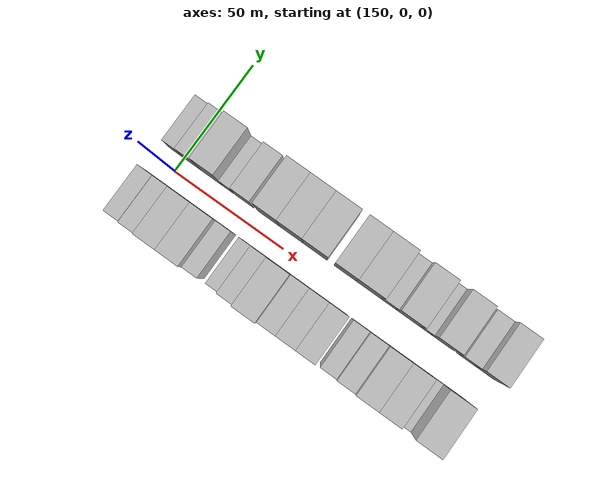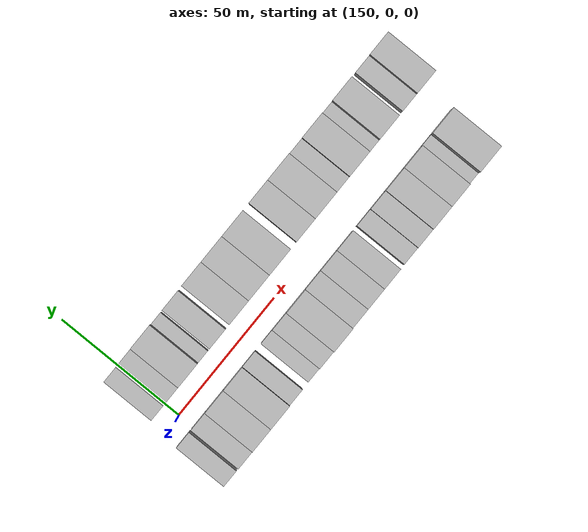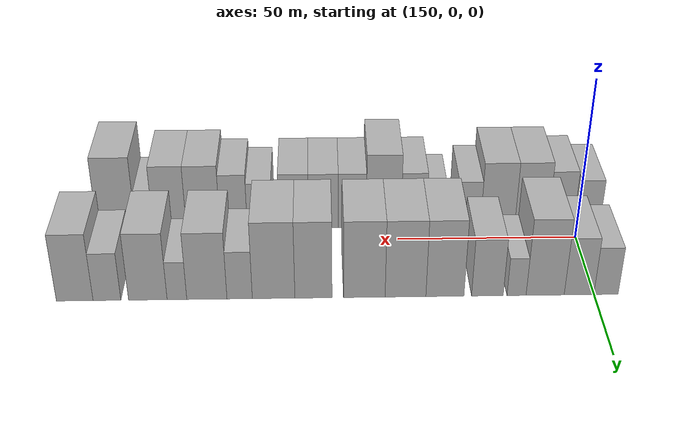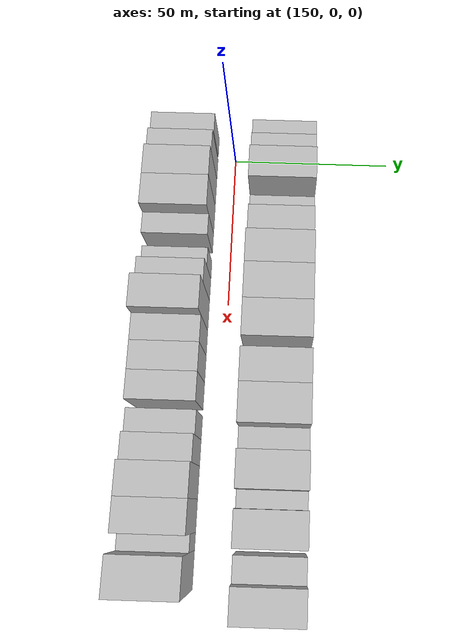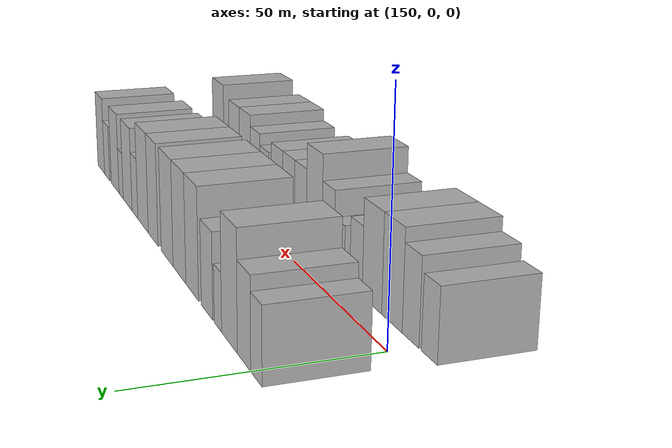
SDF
<sdf version="1.6">
 <world name="default">
  <model name="building_15">
   <static>1</static>
   <pose>146.8284 16.0000 0 0.000000 0.000000 1.570796</pose>
   <link name="link">
    <pose>0 0 7.50 0 0 0</pose>
    <collision name="collision"><geometry><box><size>20.0000 6.3967 15.0000</size></box></geometry></collision>
    <visual name="visual">
     <cast_shadows>0</cast_shadows>
     <geometry><box><size>20.0000 6.3967 15.0000</size></box></geometry>
     <material>
      <script>
       <uri>model://HANNAS_wall/materials/scripts</uri>
       <uri>model://HANNAS_wall/materials/textures</uri>
       <name>vrc/HANNAS_wall</name>
      </script>
     </material>
    </visual>
   </link>
  </model>
  <model name="building_16">
   <static>1</static>
   <pose>153.9316 16.0000 0 0.000000 0.000000 1.570796</pose>
   <link name="link">
    <pose>0 0 9.00 0 0 0</pose>
    <collision name="collision"><geometry><box><size>20.0000 7.8097 18.0000</size></box></geometry></collision>
    <visual name="visual">
     <cast_shadows>0</cast_shadows>
     <geometry><box><size>20.0000 7.8097 18.0000</size></box></geometry>
     <material>
      <script>
       <uri>model://HANNAS_wall/materials/scripts</uri>
       <uri>model://HANNAS_wall/materials/textures</uri>
       <name>vrc/HANNAS_wall</name>
      </script>
     </material>
    </visual>
   </link>
  </model>
  <model name="building_17">
   <static>1</static>
   <pose>162.8556 16.0000 0 0.000000 0.000000 1.570796</pose>
   <link name="link">
    <pose>0 0 12.00 0 0 0</pose>
    <collision name="collision"><geometry><box><size>20.0000 10.0382 24.0000</size></box></geometry></collision>
    <visual name="visual">
     <cast_shadows>0</cast_shadows>
     <geometry><box><size>20.0000 10.0382 24.0000</size></box></geometry>
     <material>
      <script>
       <uri>model://HANNAS_wall/materials/scripts</uri>
       <uri>model://HANNAS_wall/materials/textures</uri>
       <name>vrc/HANNAS_wall</name>
      </script>
     </material>
    </visual>
   </link>
  </model>
  <model name="building_18">
   <static>1</static>
   <pose>170.3821 16.0000 0 0.000000 0.000000 1.570796</pose>
   <link name="link">
    <pose>0 0 6.00 0 0 0</pose>
    <collision name="collision"><geometry><box><size>20.0000 5.0147 12.0000</size></box></geometry></collision>
    <visual name="visual">
     <cast_shadows>0</cast_shadows>
     <geometry><box><size>20.0000 5.0147 12.0000</size></box></geometry>
     <material>
      <script>
       <uri>model://HANNAS_wall/materials/scripts</uri>
       <uri>model://HANNAS_wall/materials/textures</uri>
       <name>vrc/HANNAS_wall</name>
      </script>
     </material>
    </visual>
   </link>
  </model>
  <model name="building_19">
   <static>1</static>
   <pose>178.0471 16.0000 0 0.000000 0.000000 1.570796</pose>
   <link name="link">
    <pose>0 0 9.00 0 0 0</pose>
    <collision name="collision"><geometry><box><size>20.0000 8.3153 18.0000</size></box></geometry></collision>
    <visual name="visual">
     <cast_shadows>0</cast_shadows>
     <geometry><box><size>20.0000 8.3153 18.0000</size></box></geometry>
     <material>
      <script>
       <uri>model://HANNAS_wall/materials/scripts</uri>
       <uri>model://HANNAS_wall/materials/textures</uri>
       <name>vrc/HANNAS_wall</name>
      </script>
     </material>
    </visual>
   </link>
  </model>
  <model name="building_20">
   <static>1</static>
   <pose>189.2018 16.0000 0 0.000000 0.000000 1.570796</pose>
   <link name="link">
    <pose>0 0 12.00 0 0 0</pose>
    <collision name="collision"><geometry><box><size>20.0000 9.9940 24.0000</size></box></geometry></collision>
    <visual name="visual">
     <cast_shadows>0</cast_shadows>
     <geometry><box><size>20.0000 9.9940 24.0000</size></box></geometry>
     <material>
      <script>
       <uri>model://HANNAS_wall/materials/scripts</uri>
       <uri>model://HANNAS_wall/materials/textures</uri>
       <name>vrc/HANNAS_wall</name>
      </script>
     </material>
    </visual>
   </link>
  </model>
  <model name="building_21">
   <static>1</static>
   <pose>199.5516 16.0000 0 0.000000 0.000000 1.570796</pose>
   <link name="link">
    <pose>0 0 12.00 0 0 0</pose>
    <collision name="collision"><geometry><box><size>20.0000 10.7056 24.0000</size></box></geometry></collision>
    <visual name="visual">
     <cast_shadows>0</cast_shadows>
     <geometry><box><size>20.0000 10.7056 24.0000</size></box></geometry>
     <material>
      <script>
       <uri>model://HANNAS_wall/materials/scripts</uri>
       <uri>model://HANNAS_wall/materials/textures</uri>
       <name>vrc/HANNAS_wall</name>
      </script>
     </material>
    </visual>
   </link>
  </model>
  <model name="building_22">
   <static>1</static>
   <pose>210.3530 16.0000 0 0.000000 0.000000 1.570796</pose>
   <link name="link">
    <pose>0 0 12.00 0 0 0</pose>
    <collision name="collision"><geometry><box><size>20.0000 10.8971 24.0000</size></box></geometry></collision>
    <visual name="visual">
     <cast_shadows>0</cast_shadows>
     <geometry><box><size>20.0000 10.8971 24.0000</size></box></geometry>
     <material>
      <script>
       <uri>model://HANNAS_wall/materials/scripts</uri>
       <uri>model://HANNAS_wall/materials/textures</uri>
       <name>vrc/HANNAS_wall</name>
      </script>
     </material>
    </visual>
   </link>
  </model>
  <model name="building_23">
   <static>1</static>
   <pose>223.6579 16.0000 0 0.000000 0.000000 1.570796</pose>
   <link name="link">
    <pose>0 0 12.00 0 0 0</pose>
    <collision name="collision"><geometry><box><size>20.0000 9.7128 24.0000</size></box></geometry></collision>
    <visual name="visual">
     <cast_shadows>0</cast_shadows>
     <geometry><box><size>20.0000 9.7128 24.0000</size></box></geometry>
     <material>
      <script>
       <uri>model://HANNAS_wall/materials/scripts</uri>
       <uri>model://HANNAS_wall/materials/textures</uri>
       <name>vrc/HANNAS_wall</name>
      </script>
     </material>
    </visual>
   </link>
  </model>
  <model name="building_24">
   <static>1</static>
   <pose>234.0782 16.0000 0 0.000000 0.000000 1.570796</pose>
   <link name="link">
    <pose>0 0 12.00 0 0 0</pose>
    <collision name="collision"><geometry><box><size>20.0000 11.1277 24.0000</size></box></geometry></collision>
    <visual name="visual">
     <cast_shadows>0</cast_shadows>
     <geometry><box><size>20.0000 11.1277 24.0000</size></box></geometry>
     <material>
      <script>
       <uri>model://HANNAS_wall/materials/scripts</uri>
       <uri>model://HANNAS_wall/materials/textures</uri>
       <name>vrc/HANNAS_wall</name>
      </script>
     </material>
    </visual>
   </link>
  </model>
  <model name="building_25">
   <static>1</static>
   <pose>242.9531 16.0000 0 0.000000 0.000000 1.570796</pose>
   <link name="link">
    <pose>0 0 7.50 0 0 0</pose>
    <collision name="collision"><geometry><box><size>20.0000 6.6221 15.0000</size></box></geometry></collision>
    <visual name="visual">
     <cast_shadows>0</cast_shadows>
     <geometry><box><size>20.0000 6.6221 15.0000</size></box></geometry>
     <material>
      <script>
       <uri>model://HANNAS_wall/materials/scripts</uri>
       <uri>model://HANNAS_wall/materials/textures</uri>
       <name>vrc/HANNAS_wall</name>
      </script>
     </material>
    </visual>
   </link>
  </model>
  <model name="building_26">
   <static>1</static>
   <pose>251.5019 16.0000 0 0.000000 0.000000 1.570796</pose>
   <link name="link">
    <pose>0 0 10.50 0 0 0</pose>
    <collision name="collision"><geometry><box><size>20.0000 10.4754 21.0000</size></box></geometry></collision>
    <visual name="visual">
     <cast_shadows>0</cast_shadows>
     <geometry><box><size>20.0000 10.4754 21.0000</size></box></geometry>
     <material>
      <script>
       <uri>model://HANNAS_wall/materials/scripts</uri>
       <uri>model://HANNAS_wall/materials/textures</uri>
       <name>vrc/HANNAS_wall</name>
      </script>
     </material>
    </visual>
   </link>
  </model>
  <model name="building_27">
   <static>1</static>
   <pose>259.3025 16.0000 0 0.000000 0.000000 1.570796</pose>
   <link name="link">
    <pose>0 0 6.00 0 0 0</pose>
    <collision name="collision"><geometry><box><size>20.0000 5.1259 12.0000</size></box></geometry></collision>
    <visual name="visual">
     <cast_shadows>0</cast_shadows>
     <geometry><box><size>20.0000 5.1259 12.0000</size></box></geometry>
     <material>
      <script>
       <uri>model://HANNAS_wall/materials/scripts</uri>
       <uri>model://HANNAS_wall/materials/textures</uri>
       <name>vrc/HANNAS_wall</name>
      </script>
     </material>
    </visual>
   </link>
  </model>
  <model name="building_28">
   <static>1</static>
   <pose>266.8906 16.0000 0 0.000000 0.000000 1.570796</pose>
   <link name="link">
    <pose>0 0 10.50 0 0 0</pose>
    <collision name="collision"><geometry><box><size>20.0000 10.0502 21.0000</size></box></geometry></collision>
    <visual name="visual">
     <cast_shadows>0</cast_shadows>
     <geometry><box><size>20.0000 10.0502 21.0000</size></box></geometry>
     <material>
      <script>
       <uri>model://HANNAS_wall/materials/scripts</uri>
       <uri>model://HANNAS_wall/materials/textures</uri>
       <name>vrc/HANNAS_wall</name>
      </script>
     </material>
    </visual>
   </link>
  </model>
  <model name="building_29">
   <static>1</static>
   <pose>277.5307 16.0000 0 0.000000 0.000000 1.570796</pose>
   <link name="link">
    <pose>0 0 7.50 0 0 0</pose>
    <collision name="collision"><geometry><box><size>20.0000 7.2301 15.0000</size></box></geometry></collision>
    <visual name="visual">
     <cast_shadows>0</cast_shadows>
     <geometry><box><size>20.0000 7.2301 15.0000</size></box></geometry>
     <material>
      <script>
       <uri>model://HANNAS_wall/materials/scripts</uri>
       <uri>model://HANNAS_wall/materials/textures</uri>
       <name>vrc/HANNAS_wall</name>
      </script>
     </material>
    </visual>
   </link>
  </model>
  <model name="building_30">
   <static>1</static>
   <pose>285.9117 16.0000 0 0.000000 0.000000 1.570796</pose>
   <link name="link">
    <pose>0 0 10.50 0 0 0</pose>
    <collision name="collision"><geometry><box><size>20.0000 9.5318 21.0000</size></box></geometry></collision>
    <visual name="visual">
     <cast_shadows>0</cast_shadows>
     <geometry><box><size>20.0000 9.5318 21.0000</size></box></geometry>
     <material>
      <script>
       <uri>model://HANNAS_wall/materials/scripts</uri>
       <uri>model://HANNAS_wall/materials/textures</uri>
       <name>vrc/HANNAS_wall</name>
      </script>
     </material>
    </visual>
   </link>
  </model>
  <model name="building_47">
   <static>1</static>
   <pose>145.1562 -16.0000 0 0.000000 0.000000 1.570796</pose>
   <link name="link">
    <pose>0 0 7.50 0 0 0</pose>
    <collision name="collision"><geometry><box><size>20.0000 6.5704 15.0000</size></box></geometry></collision>
    <visual name="visual">
     <cast_shadows>0</cast_shadows>
     <geometry><box><size>20.0000 6.5704 15.0000</size></box></geometry>
     <material>
      <script>
       <uri>model://HANNAS_wall/materials/scripts</uri>
       <uri>model://HANNAS_wall/materials/textures</uri>
       <name>vrc/HANNAS_wall</name>
      </script>
     </material>
    </visual>
   </link>
  </model>
  <model name="building_48">
   <static>1</static>
   <pose>153.0912 -16.0000 0 0.000000 0.000000 1.570796</pose>
   <link name="link">
    <pose>0 0 9.00 0 0 0</pose>
    <collision name="collision"><geometry><box><size>20.0000 7.2997 18.0000</size></box></geometry></collision>
    <visual name="visual">
     <cast_shadows>0</cast_shadows>
     <geometry><box><size>20.0000 7.2997 18.0000</size></box></geometry>
     <material>
      <script>
       <uri>model://HANNAS_wall/materials/scripts</uri>
       <uri>model://HANNAS_wall/materials/textures</uri>
       <name>vrc/HANNAS_wall</name>
      </script>
     </material>
    </visual>
   </link>
  </model>
  <model name="building_49">
   <static>1</static>
   <pose>161.4949 -16.0000 0 0.000000 0.000000 1.570796</pose>
   <link name="link">
    <pose>0 0 10.50 0 0 0</pose>
    <collision name="collision"><geometry><box><size>20.0000 9.5077 21.0000</size></box></geometry></collision>
    <visual name="visual">
     <cast_shadows>0</cast_shadows>
     <geometry><box><size>20.0000 9.5077 21.0000</size></box></geometry>
     <material>
      <script>
       <uri>model://HANNAS_wall/materials/scripts</uri>
       <uri>model://HANNAS_wall/materials/textures</uri>
       <name>vrc/HANNAS_wall</name>
      </script>
     </material>
    </visual>
   </link>
  </model>
  <model name="building_50">
   <static>1</static>
   <pose>171.1492 -16.0000 0 0.000000 0.000000 1.570796</pose>
   <link name="link">
    <pose>0 0 10.50 0 0 0</pose>
    <collision name="collision"><geometry><box><size>20.0000 9.8008 21.0000</size></box></geometry></collision>
    <visual name="visual">
     <cast_shadows>0</cast_shadows>
     <geometry><box><size>20.0000 9.8008 21.0000</size></box></geometry>
     <material>
      <script>
       <uri>model://HANNAS_wall/materials/scripts</uri>
       <uri>model://HANNAS_wall/materials/textures</uri>
       <name>vrc/HANNAS_wall</name>
      </script>
     </material>
    </visual>
   </link>
  </model>
  <model name="building_51">
   <static>1</static>
   <pose>179.3652 -16.0000 0 0.000000 0.000000 1.570796</pose>
   <link name="link">
    <pose>0 0 7.50 0 0 0</pose>
    <collision name="collision"><geometry><box><size>20.0000 6.6311 15.0000</size></box></geometry></collision>
    <visual name="visual">
     <cast_shadows>0</cast_shadows>
     <geometry><box><size>20.0000 6.6311 15.0000</size></box></geometry>
     <material>
      <script>
       <uri>model://HANNAS_wall/materials/scripts</uri>
       <uri>model://HANNAS_wall/materials/textures</uri>
       <name>vrc/HANNAS_wall</name>
      </script>
     </material>
    </visual>
   </link>
  </model>
  <model name="building_52">
   <static>1</static>
   <pose>188.6065 -16.0000 0 0.000000 0.000000 1.570796</pose>
   <link name="link">
    <pose>0 0 6.00 0 0 0</pose>
    <collision name="collision"><geometry><box><size>20.0000 5.8515 12.0000</size></box></geometry></collision>
    <visual name="visual">
     <cast_shadows>0</cast_shadows>
     <geometry><box><size>20.0000 5.8515 12.0000</size></box></geometry>
     <material>
      <script>
       <uri>model://HANNAS_wall/materials/scripts</uri>
       <uri>model://HANNAS_wall/materials/textures</uri>
       <name>vrc/HANNAS_wall</name>
      </script>
     </material>
    </visual>
   </link>
  </model>
  <model name="building_53">
   <static>1</static>
   <pose>195.1559 -16.0000 0 0.000000 0.000000 1.570796</pose>
   <link name="link">
    <pose>0 0 9.00 0 0 0</pose>
    <collision name="collision"><geometry><box><size>20.0000 7.2474 18.0000</size></box></geometry></collision>
    <visual name="visual">
     <cast_shadows>0</cast_shadows>
     <geometry><box><size>20.0000 7.2474 18.0000</size></box></geometry>
     <material>
      <script>
       <uri>model://HANNAS_wall/materials/scripts</uri>
       <uri>model://HANNAS_wall/materials/textures</uri>
       <name>vrc/HANNAS_wall</name>
      </script>
     </material>
    </visual>
   </link>
  </model>
  <model name="building_54">
   <static>1</static>
   <pose>203.7086 -16.0000 0 0.000000 0.000000 1.570796</pose>
   <link name="link">
    <pose>0 0 12.00 0 0 0</pose>
    <collision name="collision"><geometry><box><size>20.0000 9.8580 24.0000</size></box></geometry></collision>
    <visual name="visual">
     <cast_shadows>0</cast_shadows>
     <geometry><box><size>20.0000 9.8580 24.0000</size></box></geometry>
     <material>
      <script>
       <uri>model://HANNAS_wall/materials/scripts</uri>
       <uri>model://HANNAS_wall/materials/textures</uri>
       <name>vrc/HANNAS_wall</name>
      </script>
     </material>
    </visual>
   </link>
  </model>
  <model name="building_55">
   <static>1</static>
   <pose>212.5999 -16.0000 0 0.000000 0.000000 1.570796</pose>
   <link name="link">
    <pose>0 0 9.00 0 0 0</pose>
    <collision name="collision"><geometry><box><size>20.0000 7.9246 18.0000</size></box></geometry></collision>
    <visual name="visual">
     <cast_shadows>0</cast_shadows>
     <geometry><box><size>20.0000 7.9246 18.0000</size></box></geometry>
     <material>
      <script>
       <uri>model://HANNAS_wall/materials/scripts</uri>
       <uri>model://HANNAS_wall/materials/textures</uri>
       <name>vrc/HANNAS_wall</name>
      </script>
     </material>
    </visual>
   </link>
  </model>
  <model name="building_56">
   <static>1</static>
   <pose>220.8051 -16.0000 0 0.000000 0.000000 1.570796</pose>
   <link name="link">
    <pose>0 0 9.00 0 0 0</pose>
    <collision name="collision"><geometry><box><size>20.0000 8.4857 18.0000</size></box></geometry></collision>
    <visual name="visual">
     <cast_shadows>0</cast_shadows>
     <geometry><box><size>20.0000 8.4857 18.0000</size></box></geometry>
     <material>
      <script>
       <uri>model://HANNAS_wall/materials/scripts</uri>
       <uri>model://HANNAS_wall/materials/textures</uri>
       <name>vrc/HANNAS_wall</name>
      </script>
     </material>
    </visual>
   </link>
  </model>
  <model name="building_57">
   <static>1</static>
   <pose>229.2428 -16.0000 0 0.000000 0.000000 1.570796</pose>
   <link name="link">
    <pose>0 0 9.00 0 0 0</pose>
    <collision name="collision"><geometry><box><size>20.0000 8.3898 18.0000</size></box></geometry></collision>
    <visual name="visual">
     <cast_shadows>0</cast_shadows>
     <geometry><box><size>20.0000 8.3898 18.0000</size></box></geometry>
     <material>
      <script>
       <uri>model://HANNAS_wall/materials/scripts</uri>
       <uri>model://HANNAS_wall/materials/textures</uri>
       <name>vrc/HANNAS_wall</name>
      </script>
     </material>
    </visual>
   </link>
  </model>
  <model name="building_58">
   <static>1</static>
   <pose>238.9333 -16.0000 0 0.000000 0.000000 1.570796</pose>
   <link name="link">
    <pose>0 0 7.50 0 0 0</pose>
    <collision name="collision"><geometry><box><size>20.0000 6.9911 15.0000</size></box></geometry></collision>
    <visual name="visual">
     <cast_shadows>0</cast_shadows>
     <geometry><box><size>20.0000 6.9911 15.0000</size></box></geometry>
     <material>
      <script>
       <uri>model://HANNAS_wall/materials/scripts</uri>
       <uri>model://HANNAS_wall/materials/textures</uri>
       <name>vrc/HANNAS_wall</name>
      </script>
     </material>
    </visual>
   </link>
  </model>
  <model name="building_59">
   <static>1</static>
   <pose>246.2877 -16.0000 0 0.000000 0.000000 1.570796</pose>
   <link name="link">
    <pose>0 0 9.00 0 0 0</pose>
    <collision name="collision"><geometry><box><size>20.0000 7.7177 18.0000</size></box></geometry></collision>
    <visual name="visual">
     <cast_shadows>0</cast_shadows>
     <geometry><box><size>20.0000 7.7177 18.0000</size></box></geometry>
     <material>
      <script>
       <uri>model://HANNAS_wall/materials/scripts</uri>
       <uri>model://HANNAS_wall/materials/textures</uri>
       <name>vrc/HANNAS_wall</name>
      </script>
     </material>
    </visual>
   </link>
  </model>
  <model name="building_60">
   <static>1</static>
   <pose>254.9115 -16.0000 0 0.000000 0.000000 1.570796</pose>
   <link name="link">
    <pose>0 0 10.50 0 0 0</pose>
    <collision name="collision"><geometry><box><size>20.0000 9.5301 21.0000</size></box></geometry></collision>
    <visual name="visual">
     <cast_shadows>0</cast_shadows>
     <geometry><box><size>20.0000 9.5301 21.0000</size></box></geometry>
     <material>
      <script>
       <uri>model://HANNAS_wall/materials/scripts</uri>
       <uri>model://HANNAS_wall/materials/textures</uri>
       <name>vrc/HANNAS_wall</name>
      </script>
     </material>
    </visual>
   </link>
  </model>
  <model name="building_61">
   <static>1</static>
   <pose>264.3810 -16.0000 0 0.000000 0.000000 1.570796</pose>
   <link name="link">
    <pose>0 0 10.50 0 0 0</pose>
    <collision name="collision"><geometry><box><size>20.0000 9.4089 21.0000</size></box></geometry></collision>
    <visual name="visual">
     <cast_shadows>0</cast_shadows>
     <geometry><box><size>20.0000 9.4089 21.0000</size></box></geometry>
     <material>
      <script>
       <uri>model://HANNAS_wall/materials/scripts</uri>
       <uri>model://HANNAS_wall/materials/textures</uri>
       <name>vrc/HANNAS_wall</name>
      </script>
     </material>
    </visual>
   </link>
  </model>
  <model name="building_62">
   <static>1</static>
   <pose>271.5593 -16.0000 0 0.000000 0.000000 1.570796</pose>
   <link name="link">
    <pose>0 0 6.00 0 0 0</pose>
    <collision name="collision"><geometry><box><size>20.0000 4.9477 12.0000</size></box></geometry></collision>
    <visual name="visual">
     <cast_shadows>0</cast_shadows>
     <geometry><box><size>20.0000 4.9477 12.0000</size></box></geometry>
     <material>
      <script>
       <uri>model://HANNAS_wall/materials/scripts</uri>
       <uri>model://HANNAS_wall/materials/textures</uri>
       <name>vrc/HANNAS_wall</name>
      </script>
     </material>
    </visual>
   </link>
  </model>
  <model name="building_63">
   <static>1</static>
   <pose>279.4418 -16.0000 0 0.000000 0.000000 1.570796</pose>
   <link name="link">
    <pose>0 0 12.00 0 0 0</pose>
    <collision name="collision"><geometry><box><size>20.0000 10.8171 24.0000</size></box></geometry></collision>
    <visual name="visual">
     <cast_shadows>0</cast_shadows>
     <geometry><box><size>20.0000 10.8171 24.0000</size></box></geometry>
     <material>
      <script>
       <uri>model://HANNAS_wall/materials/scripts</uri>
       <uri>model://HANNAS_wall/materials/textures</uri>
       <name>vrc/HANNAS_wall</name>
      </script>
     </material>
    </visual>
   </link>
  </model>
 </world>
</sdf>
